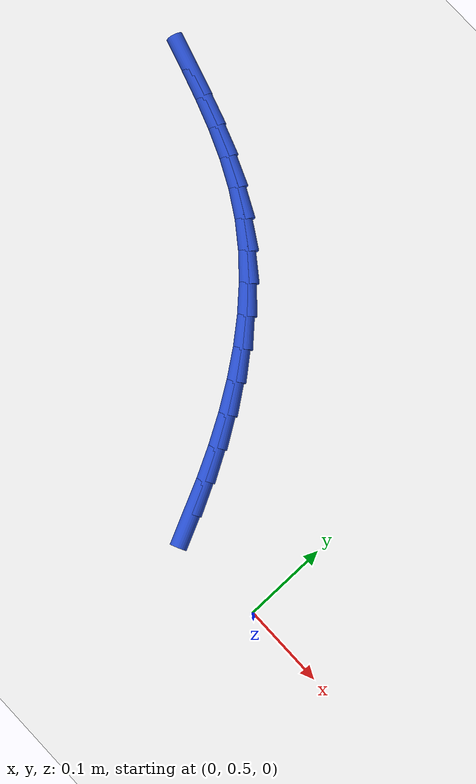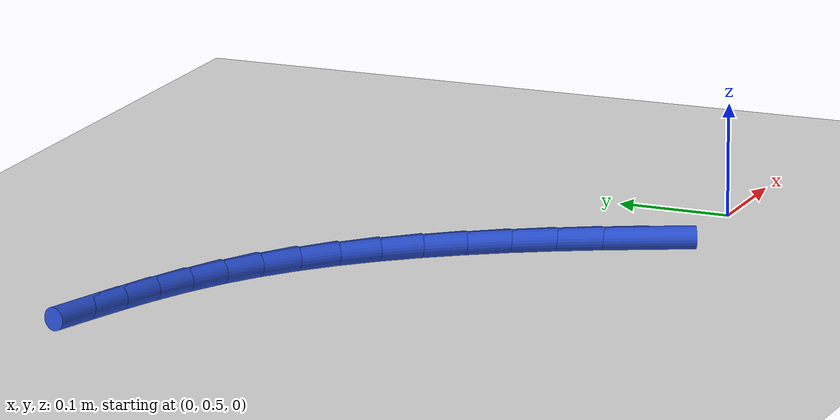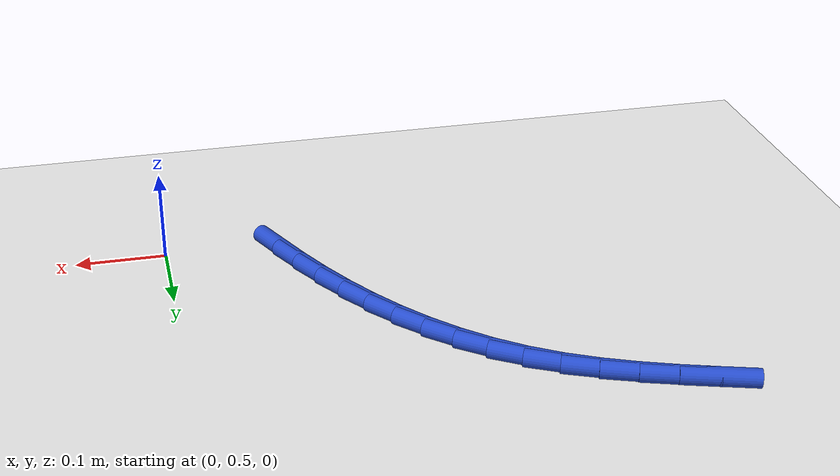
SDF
<sdf version="1.6">
 <world name="default">
  <model name="ground_plane">
   <static>1</static>
   <link name="link">
    <collision name="collision">
     <geometry><plane><normal>0 0 1</normal><size>100 100</size></plane></geometry>
     <surface><friction><ode><mu>100</mu><mu2>50</mu2></ode></friction></surface>
    </collision>
    <visual name="visual">
     <cast_shadows>0</cast_shadows>
     <geometry><plane><normal>0 0 1</normal><size>100 100</size></plane></geometry>
     <material>
      <script><uri>file://media/materials/scripts/gazebo.material</uri><name>Gazebo/WhiteGlow</name></script>
     </material>
    </visual>
   </link>
  </model>
  <model name="line">
   <link name="link_14">
    <pose>-0.1271038328190542 0.5252679476921395 0.01 0 1.57 -1.1332585287219106</pose>
    <collision name="collision">
     <geometry><cylinder><radius>0.01</radius><length>0.08</length></cylinder></geometry>
    </collision>
    <visual name="visual">
     <material>
      <script><name>Gazebo/Blue</name><uri>file://media/materials/scripts/gazebo.material</uri></script>
     </material>
     <geometry><cylinder><radius>0.01</radius><length>0.08</length></cylinder></geometry>
    </visual>
   </link>
   <link name="link_15">
    <pose>-0.1440367372751182 0.5614666861317759 0.01 0 1.57 -1.093300841316496</pose>
    <collision name="collision">
     <geometry><cylinder><radius>0.01</radius><length>0.08</length></cylinder></geometry>
    </collision>
    <visual name="visual">
     <material>
      <script><name>Gazebo/Blue</name><uri>file://media/materials/scripts/gazebo.material</uri></script>
     </material>
     <geometry><cylinder><radius>0.01</radius><length>0.08</length></cylinder></geometry>
    </visual>
   </link>
   <link name="link_16">
    <pose>-0.16225002634792493 0.596666096289086 0.01 0 1.57 -1.0481728488996482</pose>
    <collision name="collision">
     <geometry><cylinder><radius>0.01</radius><length>0.08</length></cylinder></geometry>
    </collision>
    <visual name="visual">
     <material>
      <script><name>Gazebo/Blue</name><uri>file://media/materials/scripts/gazebo.material</uri></script>
     </material>
     <geometry><cylinder><radius>0.01</radius><length>0.08</length></cylinder></geometry>
    </visual>
   </link>
   <link name="link_17">
    <pose>-0.18182647750840247 0.6306500050565942 0.01 0 1.57 -0.9973759017304041</pose>
    <collision name="collision">
     <geometry><cylinder><radius>0.01</radius><length>0.08</length></cylinder></geometry>
    </collision>
    <visual name="visual">
     <material>
      <script><name>Gazebo/Blue</name><uri>file://media/materials/scripts/gazebo.material</uri></script>
     </material>
     <geometry><cylinder><radius>0.01</radius><length>0.08</length></cylinder></geometry>
    </visual>
   </link>
   <link name="link_18">
    <pose>-0.2028488682274788 0.6632022393268256 0.01 0 1.57 -0.9404105719356979</pose>
    <collision name="collision">
     <geometry><cylinder><radius>0.01</radius><length>0.08</length></cylinder></geometry>
    </collision>
    <visual name="visual">
     <material>
      <script><name>Gazebo/Blue</name><uri>file://media/materials/scripts/gazebo.material</uri></script>
     </material>
     <geometry><cylinder><radius>0.01</radius><length>0.08</length></cylinder></geometry>
    </visual>
   </link>
   <link name="link_19">
    <pose>-0.2253999759760818 0.6941066259923051 0.01 0 1.57 -0.8768247417876714</pose>
    <collision name="collision">
     <geometry><cylinder><radius>0.01</radius><length>0.08</length></cylinder></geometry>
    </collision>
    <visual name="visual">
     <material>
      <script><name>Gazebo/Blue</name><uri>file://media/materials/scripts/gazebo.material</uri></script>
     </material>
     <geometry><cylinder><radius>0.01</radius><length>0.08</length></cylinder></geometry>
    </visual>
   </link>
   <link name="link_20">
    <pose>-0.24956257822513955 0.7231469919455572 0.01 0 1.57 -0.8062841756926488</pose>
    <collision name="collision">
     <geometry><cylinder><radius>0.01</radius><length>0.08</length></cylinder></geometry>
    </collision>
    <visual name="visual">
     <material>
      <script><name>Gazebo/Blue</name><uri>file://media/materials/scripts/gazebo.material</uri></script>
     </material>
     <geometry><cylinder><radius>0.01</radius><length>0.08</length></cylinder></geometry>
    </visual>
   </link>
   <link name="link_21">
    <pose>-0.2754194524455799 0.750107164079107 0.01 0 1.57 -0.7286666107053498</pose>
    <collision name="collision">
     <geometry><cylinder><radius>0.01</radius><length>0.08</length></cylinder></geometry>
    </collision>
    <visual name="visual">
     <material>
      <script><name>Gazebo/Blue</name><uri>file://media/materials/scripts/gazebo.material</uri></script>
     </material>
     <geometry><cylinder><radius>0.01</radius><length>0.08</length></cylinder></geometry>
    </visual>
   </link>
   <link name="link_22">
    <pose>-0.30305337610833094 0.7747709692854787 0.01 0 1.57 -0.6441724190321081</pose>
    <collision name="collision">
     <geometry><cylinder><radius>0.01</radius><length>0.08</length></cylinder></geometry>
    </collision>
    <visual name="visual">
     <material>
      <script><name>Gazebo/Blue</name><uri>file://media/materials/scripts/gazebo.material</uri></script>
     </material>
     <geometry><cylinder><radius>0.01</radius><length>0.08</length></cylinder></geometry>
    </visual>
   </link>
   <link name="link_23">
    <pose>-0.3325471266843205 0.796922234457198 0.01 0 1.57 -0.553586746652375</pose>
    <collision name="collision">
     <geometry><cylinder><radius>0.01</radius><length>0.08</length></cylinder></geometry>
    </collision>
    <visual name="visual">
     <material>
      <script><name>Gazebo/Blue</name><uri>file://media/materials/scripts/gazebo.material</uri></script>
     </material>
     <geometry><cylinder><radius>0.01</radius><length>0.08</length></cylinder></geometry>
    </visual>
   </link>
   <link name="link_24">
    <pose>-0.3639804965695306 0.8163496635535437 0.01 0 1.57 -0.46678511806596856</pose>
    <collision name="collision">
     <geometry><cylinder><radius>0.01</radius><length>0.08</length></cylinder></geometry>
    </collision>
    <visual name="visual">
     <material>
      <script><name>Gazebo/Blue</name><uri>file://media/materials/scripts/gazebo.material</uri></script>
     </material>
     <geometry><cylinder><radius>0.01</radius><length>0.08</length></cylinder></geometry>
    </visual>
   </link>
   <link name="link_25">
    <pose>-0.3972623043759716 0.8331213004408248 0.01 0 1.57 -0.3976859549420545</pose>
    <collision name="collision">
     <geometry><cylinder><radius>0.01</radius><length>0.08</length></cylinder></geometry>
    </collision>
    <visual name="visual">
     <material>
      <script><name>Gazebo/Blue</name><uri>file://media/materials/scripts/gazebo.material</uri></script>
     </material>
     <geometry><cylinder><radius>0.01</radius><length>0.08</length></cylinder></geometry>
    </visual>
   </link>
   <link name="link_26">
    <pose>-0.43204093169635965 0.8477306954639796 0.01 0 1.57 -0.34683090474144274</pose>
    <collision name="collision">
     <geometry><cylinder><radius>0.01</radius><length>0.08</length></cylinder></geometry>
    </collision>
    <visual name="visual">
     <material>
      <script><name>Gazebo/Blue</name><uri>file://media/materials/scripts/gazebo.material</uri></script>
     </material>
     <geometry><cylinder><radius>0.01</radius><length>0.08</length></cylinder></geometry>
    </visual>
   </link>
   <link name="link_27">
    <pose>-0.4679428829486655 0.8607071422720803 0.01 0 1.57 -0.3132682926825116</pose>
    <collision name="collision">
     <geometry><cylinder><radius>0.01</radius><length>0.08</length></cylinder></geometry>
    </collision>
    <visual name="visual">
     <material>
      <script><name>Gazebo/Blue</name><uri>file://media/materials/scripts/gazebo.material</uri></script>
     </material>
     <geometry><cylinder><radius>0.01</radius><length>0.08</length></cylinder></geometry>
    </visual>
   </link>
   <link name="link_28">
    <pose>-0.5045946625508607 0.8725799345141997 0.01 0 1.57 -0.2961576183353673</pose>
    <collision name="collision">
     <geometry><cylinder><radius>0.01</radius><length>0.08</length></cylinder></geometry>
    </collision>
    <visual name="visual">
     <material>
      <script><name>Gazebo/Blue</name><uri>file://media/materials/scripts/gazebo.material</uri></script>
     </material>
     <geometry><cylinder><radius>0.01</radius><length>0.08</length></cylinder></geometry>
    </visual>
   </link>
  </model>
 </world>
</sdf>
